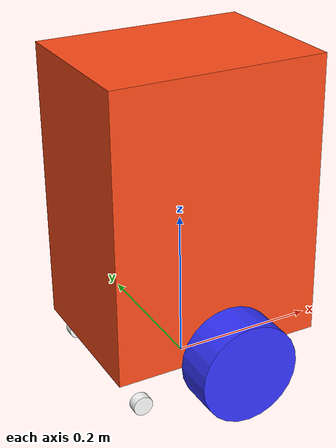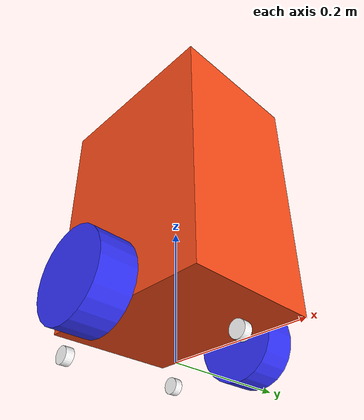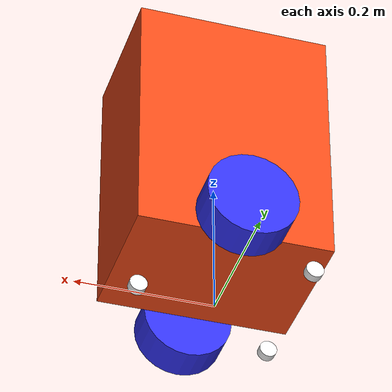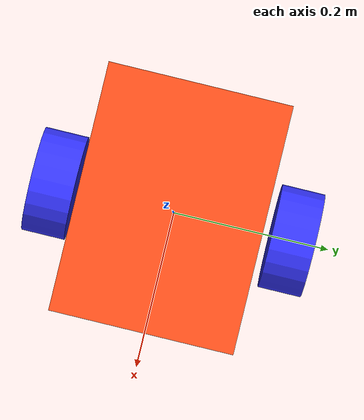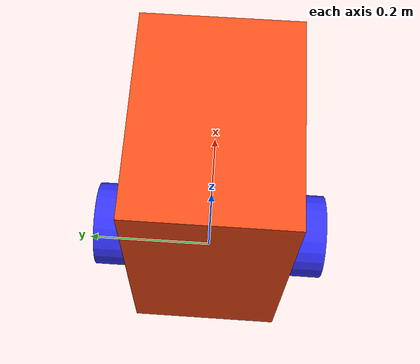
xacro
<?xml version="1.0"?>
<robot xmlns:xacro="http://www.ros.org/wiki/xacro" >

    <xacro:include filename="inertial_macros.xacro"/>

    <xacro:property name="chassis_length" value="0.280"/>
    <xacro:property name="chassis_width" value="0.208"/>
    <xacro:property name="chassis_height" value="0.375"/>
    <xacro:property name="chassis_mass" value="1.0"/>
    <xacro:property name="wheel_radius" value="0.065"/>
    <xacro:property name="wheel_thickness" value="0.054"/>
    <xacro:property name="wheel_mass" value="0.05"/>
    <xacro:property name="wheel_offset_x" value="0.0"/>
    <xacro:property name="wheel_offset_y" value="0.150"/>
    <xacro:property name="wheel_offset_z" value="0.015"/>

    <material name="white">
        <color rgba="1 1 1 1" />
    </material>

    <material name="orange">
        <color rgba="1 0.3 0.1 1"/>
    </material>

    <material name="blue">
        <color rgba="0.2 0.2 1 1"/>
    </material>

    <material name="black">
        <color rgba="0 0 0 1"/>
    </material>

    <material name="red">
        <color rgba="1 0 0 1"/>
    </material>

    <!-- BASE FOOTPRINT-->

    <link name="base_footprint">

    </link>

    <!-- BASE LINK -->
    <joint name="base_joint" type="fixed">
        <parent link="base_footprint"/>
        <child link="base_link"/>
        <origin xyz="0 0 ${wheel_radius - 0.015}"/>
    </joint>

    <link name="base_link">
        <visual>
            <origin xyz="0 0 ${chassis_height/2}"/>
            <geometry>
                <box size="${chassis_length} ${chassis_width} ${chassis_height}"/>
            </geometry>
            <material name="orange"/>
        </visual>
        <collision>
            <origin xyz="0 0 ${chassis_height/2}"/>
            <geometry>
                <box size="${chassis_length} ${chassis_width} ${chassis_height}"/>
            </geometry>
        </collision>
        <xacro:inertial_box mass="0.5" x="${chassis_length}" y="${chassis_width}" z="${chassis_height}">
            <origin xyz="0 0 ${chassis_height/2}" rpy="0 0 0"/>
        </xacro:inertial_box>
    </link>

    <gazebo reference="base_link">
        <material>Gazebo/Orange</material>
    </gazebo>

    <!-- LEFT WHEEL LINK -->

    <joint name="left_wheel_joint" type="continuous">
        <parent link="base_link"/>
        <child link="left_wheel"/>
        <origin xyz="0 ${wheel_offset_y} ${wheel_offset_z}" rpy="-${pi/2} 0 0" />
        <axis xyz="0 0 1"/>
    </joint>

    <link name="left_wheel">
        <visual>
            <geometry>
                <cylinder radius="${wheel_radius}" length="${wheel_thickness}"/>
            </geometry>
            <material name="blue"/>
        </visual>
        <collision>
            <geometry>
                <sphere radius="${wheel_radius}"/>
            </geometry>
        </collision>
        <xacro:inertial_cylinder mass="${wheel_mass}" length="${wheel_thickness}" radius="${wheel_radius}">
            <origin xyz="0 0 0" rpy="0 0 0"/>
        </xacro:inertial_cylinder>
    </link>

    <gazebo reference="left_wheel">
        <material>Gazebo/Blue</material>
    </gazebo>

    <!-- RIGHT WHEEL LINK -->

    <joint name="right_wheel_joint" type="continuous">
        <parent link="base_link"/>
        <child link="right_wheel"/>
        <origin xyz="0 ${-wheel_offset_y} ${wheel_offset_z}" rpy="${pi/2} 0 0" />
        <axis xyz="0 0 -1"/>
    </joint>

    <link name="right_wheel">
        <visual>
            <geometry>
                <cylinder radius="${wheel_radius}" length="${wheel_thickness}"/>
            </geometry>
            <material name="blue"/>
        </visual>
        <collision>
            <geometry>
                <sphere radius="${wheel_radius}"/>
            </geometry>
        </collision>
        <xacro:inertial_cylinder mass="${wheel_mass}" length="${wheel_thickness}" radius="${wheel_radius}">
            <origin xyz="0 0 0" rpy="0 0 0"/>
        </xacro:inertial_cylinder>
    </link>

    <gazebo reference="right_wheel">
        <material>Gazebo/Blue</material>

    </gazebo>

    <!-- REAR CASTER WHEEL -->

    <joint name="rear_caster_wheel_joint" type="fixed">
        <parent link="base_link"/>
        <child link="rear_caster_wheel"/>
        <origin xyz="-0.110 -0.10 -${wheel_radius - 0.0128 - 0.015}" rpy="${pi/2} 0 0" />
        <axis xyz="0 0 0"/>
    </joint>

    <link name="rear_caster_wheel">
        <visual>
            <geometry>
                <cylinder radius="0.0128" length="0.0128"/>
            </geometry>
            <material name="white"/>
        </visual>
        <collision>
            <geometry>
                <sphere radius="0.0128"/>
            </geometry>
        </collision>
        <xacro:inertial_cylinder mass="${wheel_mass}" length="${wheel_thickness}" radius="${wheel_radius}">
            <origin xyz="0 0 0" rpy="0 0 0"/>
        </xacro:inertial_cylinder>
    </link>

    <gazebo reference="rear_caster_wheel">
        <material>Gazebo/Blue</material>
        <mu1 value="0.001"/>
        <mu2 value="0.001"/>
    </gazebo>

    <!-- REAR CASTER WHEEL2 -->

    <joint name="rear_caster_wheel2_joint" type="fixed">
        <parent link="base_link"/>
        <child link="rear_caster_wheel2"/>
        <origin xyz="-0.110 0.10 -${wheel_radius - 0.0128 - 0.015}" rpy="${pi/2} 0 0" />
        <axis xyz="0 0 0"/>
    </joint>

    <link name="rear_caster_wheel2">
        <visual>
            <geometry>
                <cylinder radius="0.0128" length="0.0128"/>
            </geometry>
            <material name="white"/>
        </visual>
        <collision>
            <geometry>
                <sphere radius="0.0128"/>
            </geometry>
        </collision>
        <xacro:inertial_cylinder mass="${wheel_mass}" length="${wheel_thickness}" radius="${wheel_radius}">
            <origin xyz="0 0 0" rpy="0 0 0"/>
        </xacro:inertial_cylinder>
    </link>

    <gazebo reference="rear_caster_wheel2">
        <material>Gazebo/Blue</material>
        <mu1 value="0.001"/>
        <mu2 value="0.001"/>
    </gazebo>

    <!-- FRONT CASTER WHEEL -->

    <joint name="front_caster_wheel_joint" type="fixed">
        <parent link="base_link"/>
        <child link="front_caster_wheel"/>
        <origin xyz="0.110 0 -${wheel_radius - 0.0128 - 0.015}" rpy="${pi/2} 0 0" />
        <axis xyz="0 0 0"/>
    </joint>

    <link name="front_caster_wheel">
        <visual>
            <geometry>
                <cylinder radius="0.0128" length="0.0128"/>
            </geometry>
            <material name="white"/>
        </visual>
        <collision>
            <geometry>
                <sphere radius="0.0128"/>
            </geometry>
        </collision>
        <xacro:inertial_cylinder mass="${wheel_mass}" length="${wheel_thickness}" radius="${wheel_radius}">
            <origin xyz="0 0 0" rpy="0 0 0"/>
        </xacro:inertial_cylinder>
    </link>

    <gazebo reference="front_caster_wheel">
        <material>Gazebo/Blue</material>
        <mu1 value="0.001"/>
        <mu2 value="0.001"/>
    </gazebo>
</robot>
